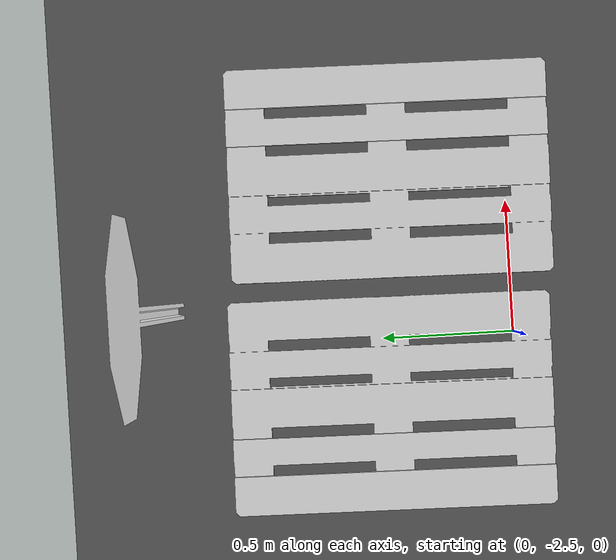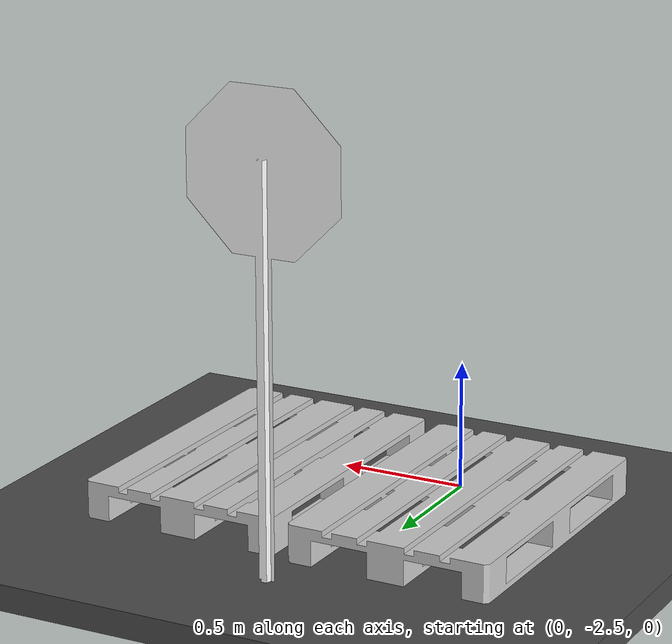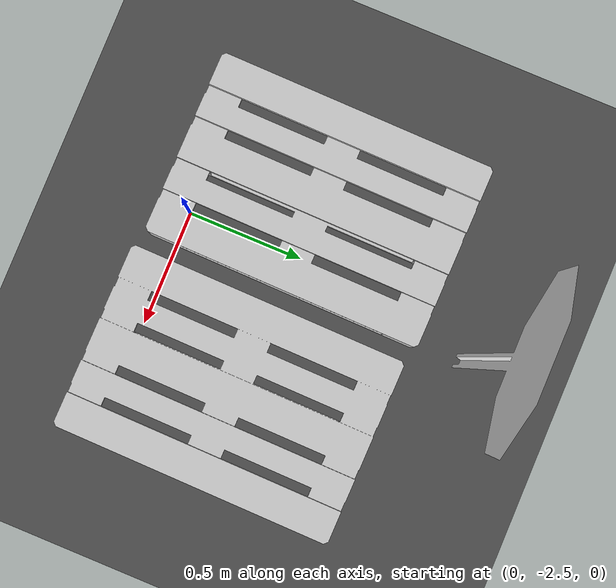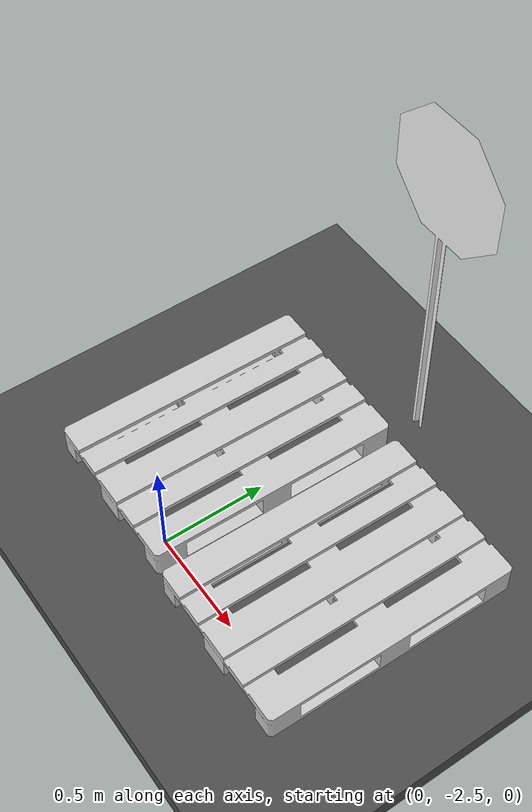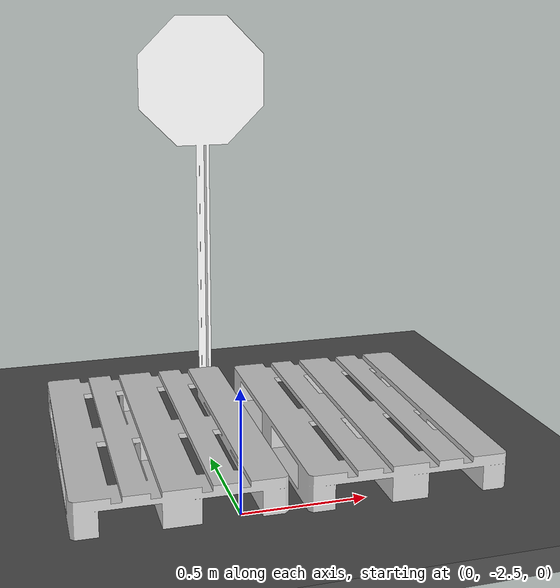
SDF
<sdf version="1.7">
 <world name="default">
  <light name="sun" type="directional">
   <pose>0 0 10 0 -0 0</pose>
   <diffuse>0.8 0.8 0.8 1</diffuse>
   <specular>0.2 0.2 0.2 1</specular>
   <attenuation>
    <range>1000</range>
    <constant>0.9</constant>
    <linear>0.01</linear>
    <quadratic>0.001</quadratic>
   </attenuation>
   <direction>-0.5 0.1 -0.9</direction>
   <spot><inner_angle>0</inner_angle><outer_angle>0</outer_angle><falloff>0</falloff></spot>
  </light>
  <model name="ground_plane">
   <static>1</static>
   <link name="link">
    <collision name="collision">
     <geometry><plane><normal>0 0 1</normal><size>100 100</size></plane></geometry>
     <surface><friction><ode><mu>100</mu><mu2>50</mu2></ode></friction></surface>
    </collision>
    <visual name="visual">
     <cast_shadows>0</cast_shadows>
     <geometry><plane><normal>0 0 1</normal><size>100 100</size></plane></geometry>
     <material>
      <script><uri>file://media/materials/scripts/gazebo.material</uri><name>Gazebo/Grey</name></script>
     </material>
    </visual>
   </link>
  </model>
  <gravity>0 0 -9.8</gravity>
  <magnetic_field>6e-06 2.3e-05 -4.2e-05</magnetic_field>
  <atmosphere type="adiabatic"/>
  <physics type="ode">
   <max_step_size>0.001</max_step_size>
   <real_time_factor>1</real_time_factor>
   <real_time_update_rate>1000</real_time_update_rate>
  </physics>
  <scene><ambient>0.4 0.4 0.4 1</ambient><background>0.7 0.7 0.7 1</background><shadows>1</shadows></scene>
  <spherical_coordinates>
   <surface_model>EARTH_WGS84</surface_model>
   <latitude_deg>0</latitude_deg>
   <longitude_deg>0</longitude_deg>
   <elevation>0</elevation>
   <heading_deg>0</heading_deg>
  </spherical_coordinates>
  <model name="asphalt_plane">
   <static>1</static>
   <link name="link">
    <collision name="collision"><geometry><box><size>20 20 0.1</size></box></geometry></collision>
    <visual name="visual">
     <cast_shadows>0</cast_shadows>
     <geometry><box><size>20 20 0.1</size></box></geometry>
     <material>
      <script>
       <uri>model://asphalt_plane/materials/scripts</uri>
       <uri>model://asphalt_plane/materials/textures</uri>
       <name>vrc/asphalt</name>
      </script>
     </material>
    </visual>
   </link>
   <pose>0.114239 -0.085505 0 0 -0 0</pose>
  </model>
  <model name="Stop Sign_0">
   <static>1</static>
   <link name="link">
    <collision name="collision">
     <geometry><mesh><uri>model://stop_sign/meshes/stop_sign.dae</uri></mesh></geometry>
    </collision>
    <visual name="visual">
     <geometry><mesh><uri>model://stop_sign/meshes/stop_sign.dae</uri></mesh></geometry>
     <material>
      <script>
       <uri>model://stop_sign/materials/scripts</uri>
       <uri>model://stop_sign/materials/textures</uri>
       <name>StopSign/Diffuse</name>
      </script>
     </material>
    </visual>
   </link>
   <pose>0.150102 -1.2379 0 0 -0 0</pose>
  </model>
  <model name="euro_pallet_1">
   <link name="link">
    <inertial>
     <mass>20</mass>
     <inertia><ixx>2.43</ixx><ixy>0</ixy><ixz>0</ixz><iyy>1.1</iyy><iyz>0</iyz><izz>3.47</izz></inertia>
    </inertial>
    <collision name="collision">
     <pose>0 0 0.05 0 -0 0</pose>
     <geometry><mesh><uri>model://euro_pallet/meshes/pallet.dae</uri><scale>0.1 0.1 0.1</scale></mesh></geometry>
    </collision>
    <visual name="visual">
     <pose>0 0 0.05 0 -0 0</pose>
     <geometry><mesh><uri>model://euro_pallet/meshes/pallet.dae</uri><scale>0.1 0.1 0.1</scale></mesh></geometry>
    </visual>
   </link>
   <pose>-0.23647 -2.01967 0.121995 -8e-06 -0 -0.016933</pose>
  </model>
  <model name="euro_pallet_2">
   <link name="link">
    <inertial>
     <mass>20</mass>
     <inertia><ixx>2.43</ixx><ixy>0</ixy><ixz>0</ixz><iyy>1.1</iyy><iyz>0</iyz><izz>3.47</izz></inertia>
    </inertial>
    <collision name="collision">
     <pose>0 0 0.05 0 -0 0</pose>
     <geometry><mesh><uri>model://euro_pallet/meshes/pallet.dae</uri><scale>0.1 0.1 0.1</scale></mesh></geometry>
    </collision>
    <visual name="visual">
     <pose>0 0 0.05 0 -0 0</pose>
     <geometry><mesh><uri>model://euro_pallet/meshes/pallet.dae</uri><scale>0.1 0.1 0.1</scale></mesh></geometry>
    </visual>
   </link>
   <pose>0.628504 -2.05464 0.121995 -8e-06 -0 -0.016934</pose>
  </model>
 </world>
</sdf>
